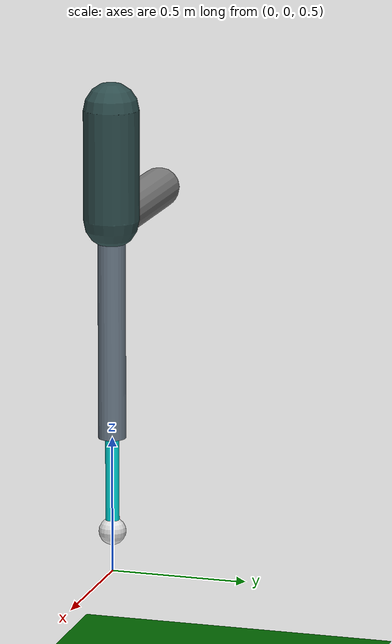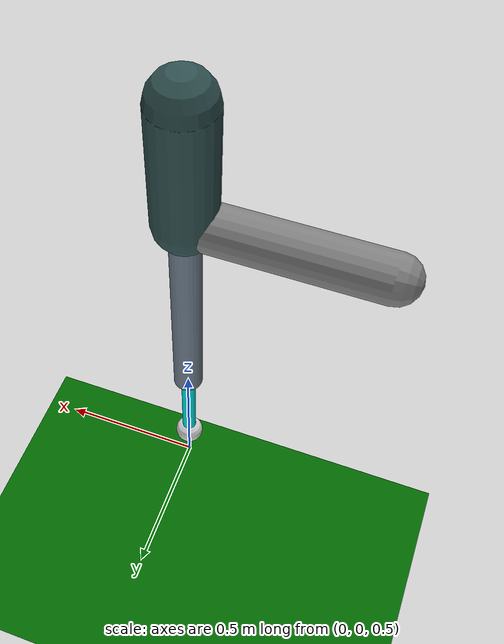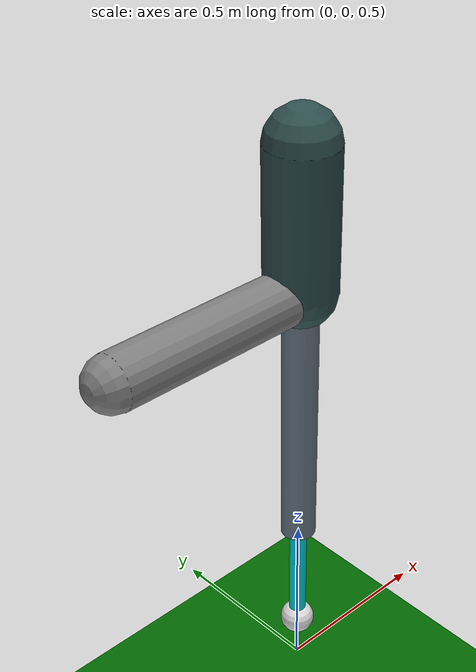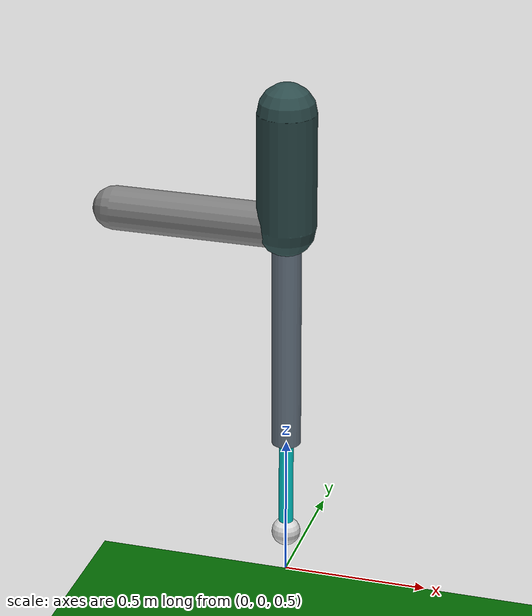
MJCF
<mujoco model="Kangaroo">
  <compiler angle="degree" inertiafromgeom="true"/>
  <option timestep="0.001" integrator="RK4"/>
  <visual>
    <map znear="0.02"/>
  </visual>
  <worldbody>
    <light cutoff="100" diffuse="1 1 1" dir="-0 0 -1.3" directional="true" exponent="1" pos="0 0 1.3" specular=".1 .1 .1"/>
    <geom conaffinity="1" condim="3" pos="-18 0 0" size="20 1 0.125" type="plane" rgba="0 0.4 0 1"/>
    <body name="torso" pos="0 0 2">
      <camera name="track" mode="trackcom" pos="0 -3 -0.25" xyaxes="1 0 0 0 0 1"/>
      <joint armature="0" axis="1 0 0" damping="0" limited="false" name="x" pos="0 0 0" stiffness="0" type="slide"/> <!-- lets us move in x axis -->
      <joint armature="0" axis="0 0 1" damping="0" limited="false" name="z" pos="0 0 0" stiffness="0" type="slide"/> <!-- lets us move in z axis -->
      <joint armature="0" axis="0 1 0" damping="0" limited="false" name="y" pos="0 0 0" stiffness="0" type="hinge"/> <!-- lets us rotate along the y axis -->
      <geom type="capsule" size="0.1 0.2" rgba="0.184 0.31 0.31 1" mass="5"/> <!-- torso shape -->
      <body name="tail" pos="0 0 -0.2">
        <joint axis="0 1 0" name="tail_joint" range="-90 90" type="hinge"/>
        <geom type="capsule" axisangle="0 1 0 90" size="0.075 0.3" pos="-0.3 0 0" rgba="0.5 0.5 0.5 1" mass="0.0001"/> <!-- tail shape -->
      </body>
      <body name="leg" pos="0 0 -0.2">
        <joint axis="0 1 0" name="leg_joint" range="-90 90" type="hinge"/>
        <geom size="0.05 0.4" pos="0 0 -0.4" type="cylinder" mass="1" rgba="0.44 0.5 0.56 1"/>
        <body name="foot" pos="0 0 -0.75">
          <joint axis="0 0 -1" name="foot_joint" springref="0" springdamper="1 0.5" range="-0.4 0.4" pos="0 0 0" type="slide"/> <!-- springdamper="time_constant damping_ratio" -->
          <geom size="0.025 0.4" pos="0 0 0" type="cylinder" mass="0.1" rgba="0 0.9 0.9 1"/>
          <geom size="0.05" pos="0 0 -0.4" mass="0.1" rgba="0.9 0.9 0.9 1"/>
        </body>
      </body>
    </body>
  </worldbody>
  <actuator>
    <general ctrllimited="true" ctrlrange="-1.0 1.0" gear="20.0" joint="leg_joint" gainprm="1"/>
    <general ctrllimited="true" ctrlrange="-1.0 1.0" gear="300.0" joint="foot_joint" gainprm="1"/>
  </actuator>
</mujoco>
